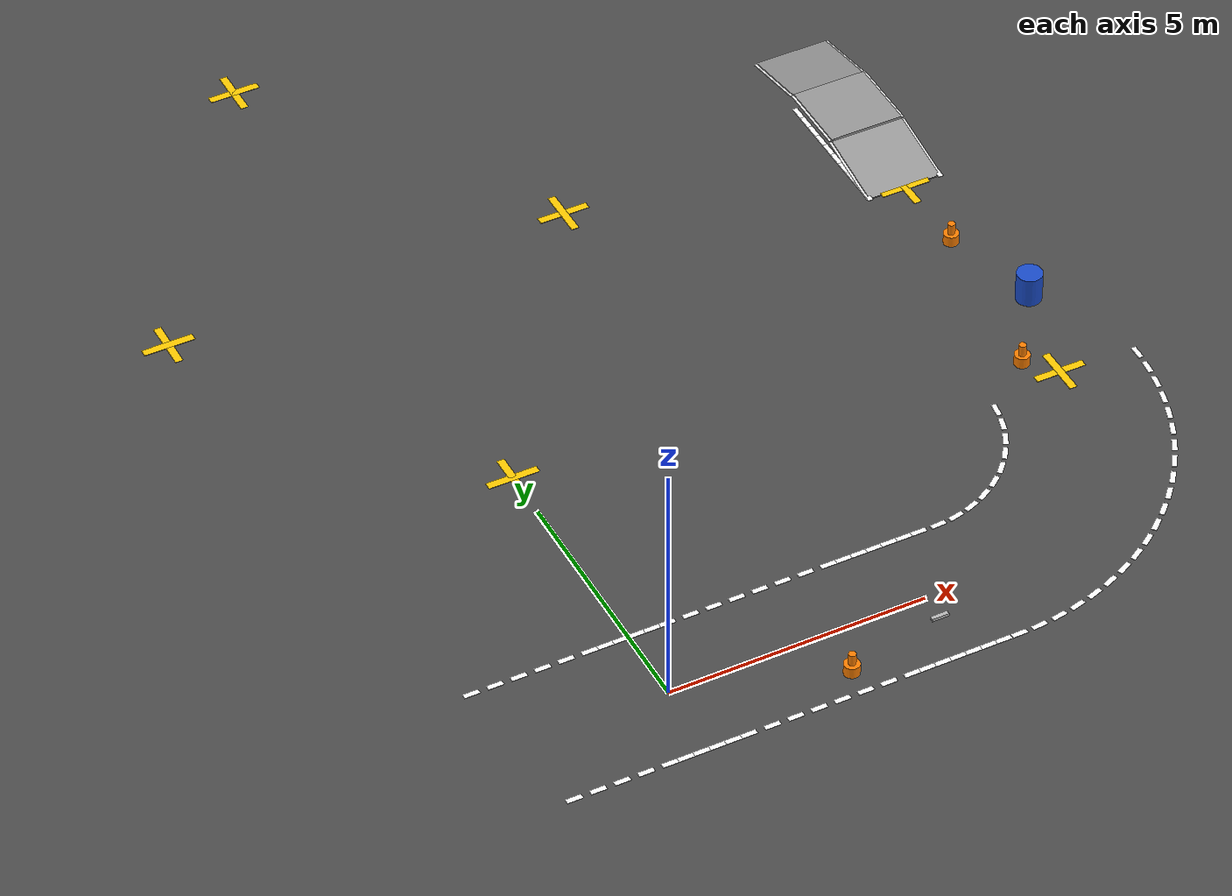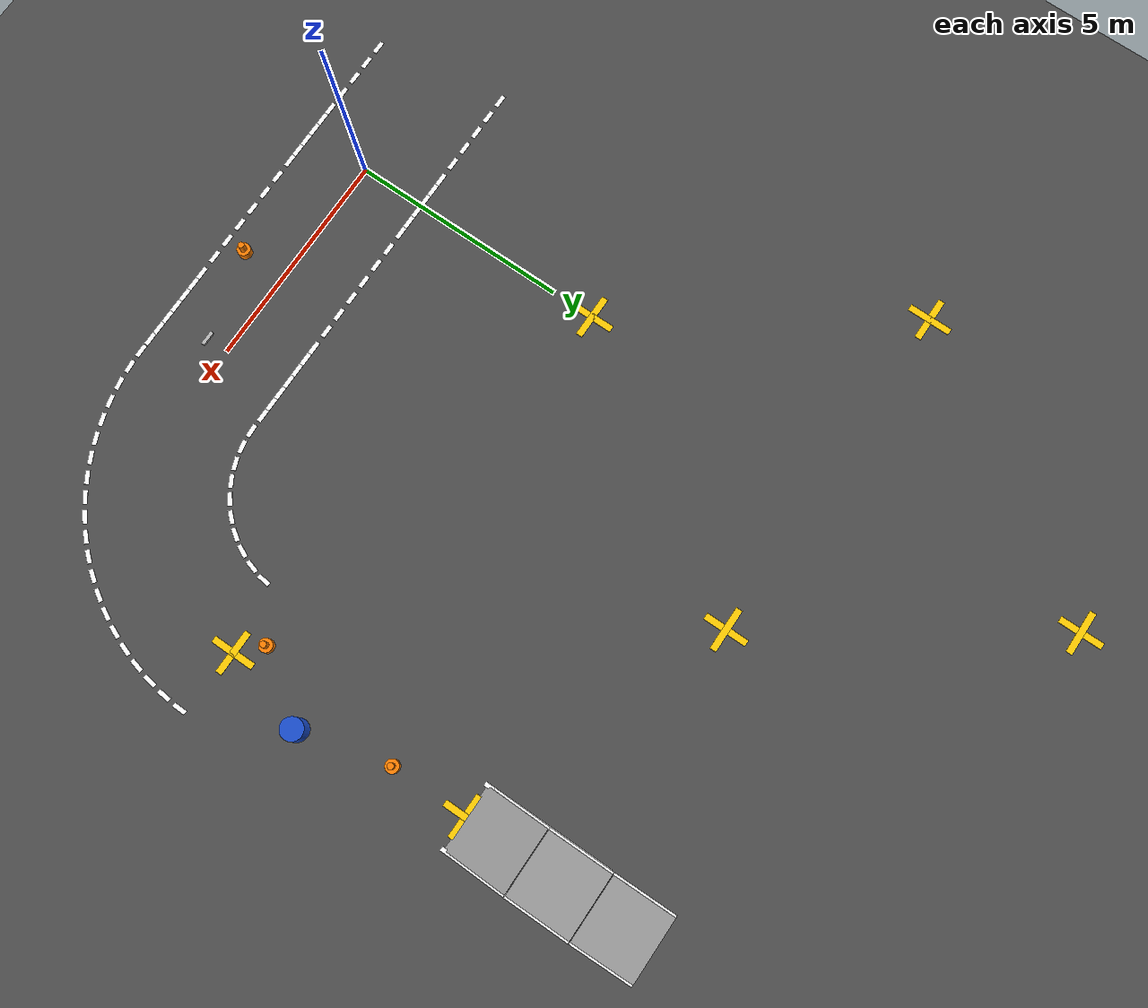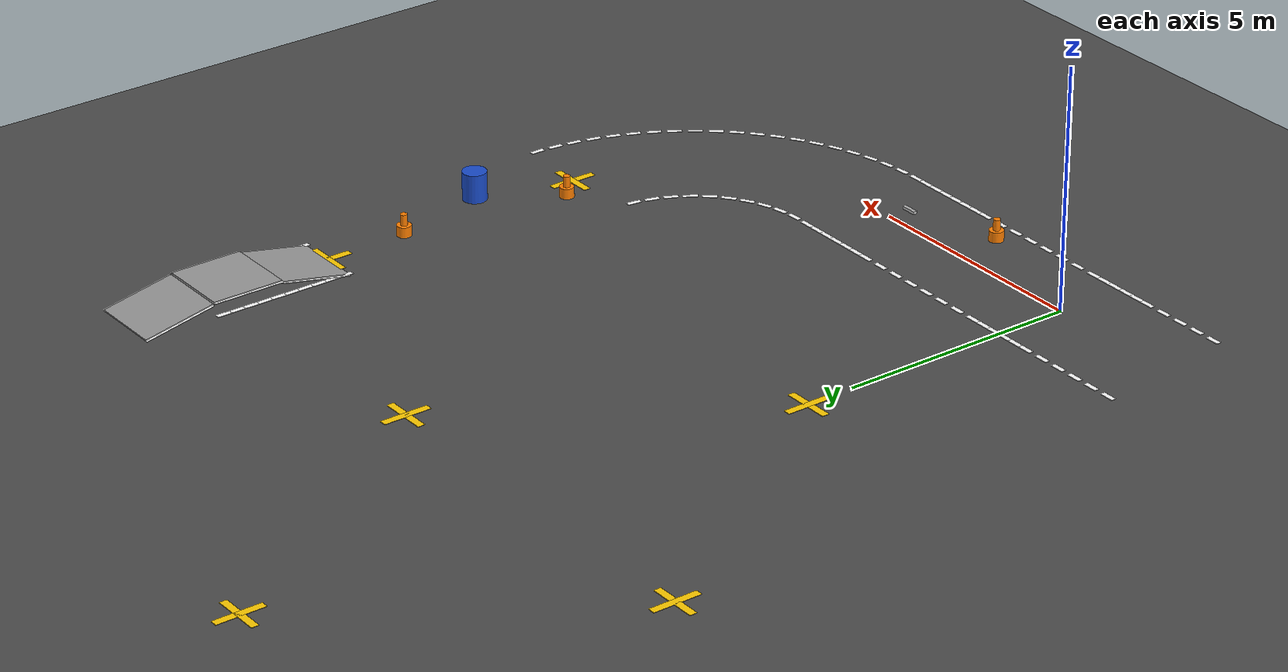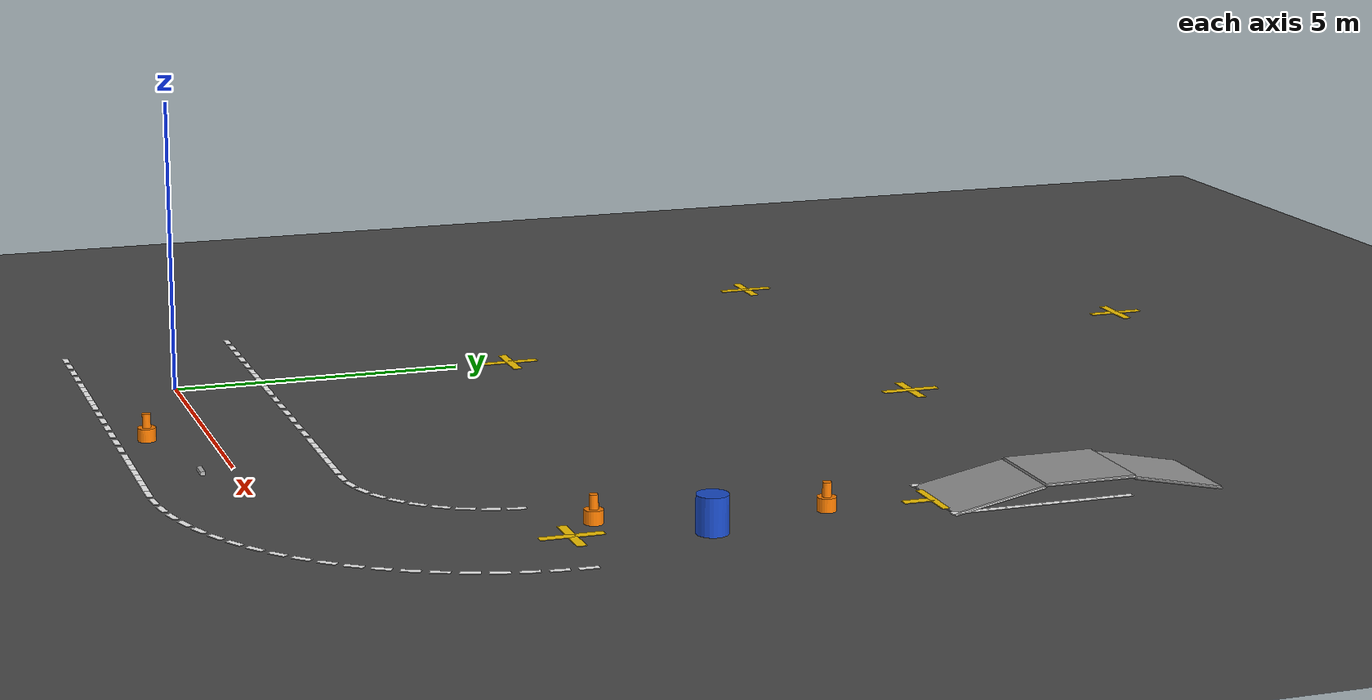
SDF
<sdf version="1.8">
 <world name="igvc_autonav">
  <model name="ground_plane">
   <static>true</static>
   <link name="link">
    <collision name="collision">
     <geometry><plane><normal>0 0 1</normal><size>60 60</size></plane></geometry>
     <surface><friction><ode><mu>0.8</mu><mu2>0.8</mu2></ode></friction></surface>
    </collision>
    <visual name="visual">
     <geometry><plane><normal>0 0 1</normal><size>60 60</size></plane></geometry>
     <material>
      <ambient>0.25 0.25 0.25 1</ambient>
      <diffuse>0.3 0.3 0.3 1</diffuse>
      <specular>0.1 0.1 0.1 1</specular>
     </material>
    </visual>
   </link>
  </model>
  <model name="lane_inner_9">
   <static>true</static>
   <pose>-3.0000 1.5000 0.01 0 0 0.0000</pose>
   <link name="link">
    <visual name="visual">
     <geometry><box><size>0.3 0.1 0.01</size></box></geometry>
     <material><ambient>1 1 1 1</ambient><diffuse>1 1 1 1</diffuse><emissive>1 1 1 1</emissive></material>
    </visual>
   </link>
  </model>
  <model name="lane_inner_10">
   <static>true</static>
   <pose>-2.5500 1.5000 0.01 0 0 0.0000</pose>
   <link name="link">
    <visual name="visual">
     <geometry><box><size>0.3 0.1 0.01</size></box></geometry>
     <material><ambient>1 1 1 1</ambient><diffuse>1 1 1 1</diffuse><emissive>1 1 1 1</emissive></material>
    </visual>
   </link>
  </model>
  <model name="lane_inner_11">
   <static>true</static>
   <pose>-2.1000 1.5000 0.01 0 0 0.0000</pose>
   <link name="link">
    <visual name="visual">
     <geometry><box><size>0.3 0.1 0.01</size></box></geometry>
     <material><ambient>1 1 1 1</ambient><diffuse>1 1 1 1</diffuse><emissive>1 1 1 1</emissive></material>
    </visual>
   </link>
  </model>
  <model name="lane_inner_12">
   <static>true</static>
   <pose>-1.6500 1.5000 0.01 0 0 0.0000</pose>
   <link name="link">
    <visual name="visual">
     <geometry><box><size>0.3 0.1 0.01</size></box></geometry>
     <material><ambient>1 1 1 1</ambient><diffuse>1 1 1 1</diffuse><emissive>1 1 1 1</emissive></material>
    </visual>
   </link>
  </model>
  <model name="lane_inner_13">
   <static>true</static>
   <pose>-1.2000 1.5000 0.01 0 0 0.0000</pose>
   <link name="link">
    <visual name="visual">
     <geometry><box><size>0.3 0.1 0.01</size></box></geometry>
     <material><ambient>1 1 1 1</ambient><diffuse>1 1 1 1</diffuse><emissive>1 1 1 1</emissive></material>
    </visual>
   </link>
  </model>
  <model name="lane_inner_14">
   <static>true</static>
   <pose>-0.7500 1.5000 0.01 0 0 0.0000</pose>
   <link name="link">
    <visual name="visual">
     <geometry><box><size>0.3 0.1 0.01</size></box></geometry>
     <material><ambient>1 1 1 1</ambient><diffuse>1 1 1 1</diffuse><emissive>1 1 1 1</emissive></material>
    </visual>
   </link>
  </model>
  <model name="lane_inner_15">
   <static>true</static>
   <pose>-0.4500 1.5000 0.01 0 0 0.0000</pose>
   <link name="link">
    <visual name="visual">
     <geometry><box><size>0.3 0.1 0.01</size></box></geometry>
     <material><ambient>1 1 1 1</ambient><diffuse>1 1 1 1</diffuse><emissive>1 1 1 1</emissive></material>
    </visual>
   </link>
  </model>
  <model name="lane_inner_16">
   <static>true</static>
   <pose>-0.1500 1.5000 0.01 0 0 0.0000</pose>
   <link name="link">
    <visual name="visual">
     <geometry><box><size>0.3 0.1 0.01</size></box></geometry>
     <material><ambient>1 1 1 1</ambient><diffuse>1 1 1 1</diffuse><emissive>1 1 1 1</emissive></material>
    </visual>
   </link>
  </model>
  <model name="lane_inner_17">
   <static>true</static>
   <pose>0.1500 1.5000 0.01 0 0 0.0000</pose>
   <link name="link">
    <visual name="visual">
     <geometry><box><size>0.3 0.1 0.01</size></box></geometry>
     <material><ambient>1 1 1 1</ambient><diffuse>1 1 1 1</diffuse><emissive>1 1 1 1</emissive></material>
    </visual>
   </link>
  </model>
  <model name="lane_inner_18">
   <static>true</static>
   <pose>0.4500 1.5000 0.01 0 0 0.0000</pose>
   <link name="link">
    <visual name="visual">
     <geometry><box><size>0.3 0.1 0.01</size></box></geometry>
     <material><ambient>1 1 1 1</ambient><diffuse>1 1 1 1</diffuse><emissive>1 1 1 1</emissive></material>
    </visual>
   </link>
  </model>
  <model name="lane_inner_19">
   <static>true</static>
   <pose>0.7500 1.5000 0.01 0 0 0.0000</pose>
   <link name="link">
    <visual name="visual">
     <geometry><box><size>0.3 0.1 0.01</size></box></geometry>
     <material><ambient>1 1 1 1</ambient><diffuse>1 1 1 1</diffuse><emissive>1 1 1 1</emissive></material>
    </visual>
   </link>
  </model>
  <model name="lane_inner_20">
   <static>true</static>
   <pose>1.2000 1.5000 0.01 0 0 0.0000</pose>
   <link name="link">
    <visual name="visual">
     <geometry><box><size>0.3 0.1 0.01</size></box></geometry>
     <material><ambient>1 1 1 1</ambient><diffuse>1 1 1 1</diffuse><emissive>1 1 1 1</emissive></material>
    </visual>
   </link>
  </model>
  <model name="lane_inner_21">
   <static>true</static>
   <pose>1.6500 1.5000 0.01 0 0 0.0000</pose>
   <link name="link">
    <visual name="visual">
     <geometry><box><size>0.3 0.1 0.01</size></box></geometry>
     <material><ambient>1 1 1 1</ambient><diffuse>1 1 1 1</diffuse><emissive>1 1 1 1</emissive></material>
    </visual>
   </link>
  </model>
  <model name="lane_inner_22">
   <static>true</static>
   <pose>2.1000 1.5000 0.01 0 0 0.0000</pose>
   <link name="link">
    <visual name="visual">
     <geometry><box><size>0.3 0.1 0.01</size></box></geometry>
     <material><ambient>1 1 1 1</ambient><diffuse>1 1 1 1</diffuse><emissive>1 1 1 1</emissive></material>
    </visual>
   </link>
  </model>
  <model name="lane_inner_23">
   <static>true</static>
   <pose>2.5500 1.5000 0.01 0 0 0.0000</pose>
   <link name="link">
    <visual name="visual">
     <geometry><box><size>0.3 0.1 0.01</size></box></geometry>
     <material><ambient>1 1 1 1</ambient><diffuse>1 1 1 1</diffuse><emissive>1 1 1 1</emissive></material>
    </visual>
   </link>
  </model>
  <model name="lane_inner_24">
   <static>true</static>
   <pose>3.0000 1.5000 0.01 0 0 0.0000</pose>
   <link name="link">
    <visual name="visual">
     <geometry><box><size>0.3 0.1 0.01</size></box></geometry>
     <material><ambient>1 1 1 1</ambient><diffuse>1 1 1 1</diffuse><emissive>1 1 1 1</emissive></material>
    </visual>
   </link>
  </model>
  <model name="lane_inner_25">
   <static>true</static>
   <pose>3.4500 1.5000 0.01 0 0 0.0000</pose>
   <link name="link">
    <visual name="visual">
     <geometry><box><size>0.3 0.1 0.01</size></box></geometry>
     <material><ambient>1 1 1 1</ambient><diffuse>1 1 1 1</diffuse><emissive>1 1 1 1</emissive></material>
    </visual>
   </link>
  </model>
  <model name="lane_inner_26">
   <static>true</static>
   <pose>3.9000 1.5000 0.01 0 0 0.0000</pose>
   <link name="link">
    <visual name="visual">
     <geometry><box><size>0.3 0.1 0.01</size></box></geometry>
     <material><ambient>1 1 1 1</ambient><diffuse>1 1 1 1</diffuse><emissive>1 1 1 1</emissive></material>
    </visual>
   </link>
  </model>
  <model name="lane_inner_27">
   <static>true</static>
   <pose>4.2000 1.5000 0.01 0 0 0.0000</pose>
   <link name="link">
    <visual name="visual">
     <geometry><box><size>0.3 0.1 0.01</size></box></geometry>
     <material><ambient>1 1 1 1</ambient><diffuse>1 1 1 1</diffuse><emissive>1 1 1 1</emissive></material>
    </visual>
   </link>
  </model>
  <model name="lane_inner_28">
   <static>true</static>
   <pose>4.5000 1.5000 0.01 0 0 0.0000</pose>
   <link name="link">
    <visual name="visual">
     <geometry><box><size>0.3 0.1 0.01</size></box></geometry>
     <material><ambient>1 1 1 1</ambient><diffuse>1 1 1 1</diffuse><emissive>1 1 1 1</emissive></material>
    </visual>
   </link>
  </model>
  <model name="lane_inner_29">
   <static>true</static>
   <pose>4.8000 1.5000 0.01 0 0 0.0000</pose>
   <link name="link">
    <visual name="visual">
     <geometry><box><size>0.3 0.1 0.01</size></box></geometry>
     <material><ambient>1 1 1 1</ambient><diffuse>1 1 1 1</diffuse><emissive>1 1 1 1</emissive></material>
    </visual>
   </link>
  </model>
  <model name="lane_inner_30">
   <static>true</static>
   <pose>5.1000 1.5000 0.01 0 0 0.0000</pose>
   <link name="link">
    <visual name="visual">
     <geometry><box><size>0.3 0.1 0.01</size></box></geometry>
     <material><ambient>1 1 1 1</ambient><diffuse>1 1 1 1</diffuse><emissive>1 1 1 1</emissive></material>
    </visual>
   </link>
  </model>
  <model name="lane_inner_31">
   <static>true</static>
   <pose>5.4000 1.5000 0.01 0 0 0.0000</pose>
   <link name="link">
    <visual name="visual">
     <geometry><box><size>0.3 0.1 0.01</size></box></geometry>
     <material><ambient>1 1 1 1</ambient><diffuse>1 1 1 1</diffuse><emissive>1 1 1 1</emissive></material>
    </visual>
   </link>
  </model>
  <model name="lane_inner_32">
   <static>true</static>
   <pose>5.7000 1.5000 0.01 0 0 0.0000</pose>
   <link name="link">
    <visual name="visual">
     <geometry><box><size>0.3 0.1 0.01</size></box></geometry>
     <material><ambient>1 1 1 1</ambient><diffuse>1 1 1 1</diffuse><emissive>1 1 1 1</emissive></material>
    </visual>
   </link>
  </model>
  <model name="lane_inner_33">
   <static>true</static>
   <pose>6.0958 1.5018 0.01 0 0 0.0575</pose>
   <link name="link">
    <visual name="visual">
     <geometry><box><size>0.3 0.1 0.01</size></box></geometry>
     <material><ambient>1 1 1 1</ambient><diffuse>1 1 1 1</diffuse><emissive>1 1 1 1</emissive></material>
    </visual>
   </link>
  </model>
  <model name="lane_inner_34">
   <static>true</static>
   <pose>6.4760 1.5457 0.01 0 0 0.2107</pose>
   <link name="link">
    <visual name="visual">
     <geometry><box><size>0.3 0.1 0.01</size></box></geometry>
     <material><ambient>1 1 1 1</ambient><diffuse>1 1 1 1</diffuse><emissive>1 1 1 1</emissive></material>
    </visual>
   </link>
  </model>
  <model name="lane_inner_35">
   <static>true</static>
   <pose>6.8450 1.6471 0.01 0 0 0.3640</pose>
   <link name="link">
    <visual name="visual">
     <geometry><box><size>0.3 0.1 0.01</size></box></geometry>
     <material><ambient>1 1 1 1</ambient><diffuse>1 1 1 1</diffuse><emissive>1 1 1 1</emissive></material>
    </visual>
   </link>
  </model>
  <model name="lane_inner_36">
   <static>true</static>
   <pose>7.1943 1.8037 0.01 0 0 0.5172</pose>
   <link name="link">
    <visual name="visual">
     <geometry><box><size>0.3 0.1 0.01</size></box></geometry>
     <material><ambient>1 1 1 1</ambient><diffuse>1 1 1 1</diffuse><emissive>1 1 1 1</emissive></material>
    </visual>
   </link>
  </model>
  <model name="lane_inner_37">
   <static>true</static>
   <pose>7.5156 2.0118 0.01 0 0 0.6705</pose>
   <link name="link">
    <visual name="visual">
     <geometry><box><size>0.3 0.1 0.01</size></box></geometry>
     <material><ambient>1 1 1 1</ambient><diffuse>1 1 1 1</diffuse><emissive>1 1 1 1</emissive></material>
    </visual>
   </link>
  </model>
  <model name="lane_inner_38">
   <static>true</static>
   <pose>7.8013 2.2664 0.01 0 0 0.8237</pose>
   <link name="link">
    <visual name="visual">
     <geometry><box><size>0.3 0.1 0.01</size></box></geometry>
     <material><ambient>1 1 1 1</ambient><diffuse>1 1 1 1</diffuse><emissive>1 1 1 1</emissive></material>
    </visual>
   </link>
  </model>
  <model name="lane_inner_39">
   <static>true</static>
   <pose>8.0448 2.5617 0.01 0 0 0.9770</pose>
   <link name="link">
    <visual name="visual">
     <geometry><box><size>0.3 0.1 0.01</size></box></geometry>
     <material><ambient>1 1 1 1</ambient><diffuse>1 1 1 1</diffuse><emissive>1 1 1 1</emissive></material>
    </visual>
   </link>
  </model>
  <model name="lane_inner_40">
   <static>true</static>
   <pose>8.2404 2.8907 0.01 0 0 1.1302</pose>
   <link name="link">
    <visual name="visual">
     <geometry><box><size>0.3 0.1 0.01</size></box></geometry>
     <material><ambient>1 1 1 1</ambient><diffuse>1 1 1 1</diffuse><emissive>1 1 1 1</emissive></material>
    </visual>
   </link>
  </model>
  <model name="lane_inner_41">
   <static>true</static>
   <pose>8.3835 3.2457 0.01 0 0 1.2835</pose>
   <link name="link">
    <visual name="visual">
     <geometry><box><size>0.3 0.1 0.01</size></box></geometry>
     <material><ambient>1 1 1 1</ambient><diffuse>1 1 1 1</diffuse><emissive>1 1 1 1</emissive></material>
    </visual>
   </link>
  </model>
  <model name="lane_inner_42">
   <static>true</static>
   <pose>8.4707 3.6184 0.01 0 0 1.4367</pose>
   <link name="link">
    <visual name="visual">
     <geometry><box><size>0.3 0.1 0.01</size></box></geometry>
     <material><ambient>1 1 1 1</ambient><diffuse>1 1 1 1</diffuse><emissive>1 1 1 1</emissive></material>
    </visual>
   </link>
  </model>
  <model name="lane_inner_43">
   <static>true</static>
   <pose>9.2500 9.8500 0.01 0 0 1.5708</pose>
   <link name="link">
    <visual name="visual">
     <geometry><box><size>0.3 0.1 0.01</size></box></geometry>
     <material><ambient>1 1 1 1</ambient><diffuse>1 1 1 1</diffuse><emissive>1 1 1 1</emissive></material>
    </visual>
   </link>
  </model>
  <model name="lane_inner_44">
   <static>true</static>
   <pose>9.2500 10.1500 0.01 0 0 1.5708</pose>
   <link name="link">
    <visual name="visual">
     <geometry><box><size>0.3 0.1 0.01</size></box></geometry>
     <material><ambient>1 1 1 1</ambient><diffuse>1 1 1 1</diffuse><emissive>1 1 1 1</emissive></material>
    </visual>
   </link>
  </model>
  <model name="lane_inner_45">
   <static>true</static>
   <pose>9.2500 10.4500 0.01 0 0 1.5708</pose>
   <link name="link">
    <visual name="visual">
     <geometry><box><size>0.3 0.1 0.01</size></box></geometry>
     <material><ambient>1 1 1 1</ambient><diffuse>1 1 1 1</diffuse><emissive>1 1 1 1</emissive></material>
    </visual>
   </link>
  </model>
  <model name="lane_inner_46">
   <static>true</static>
   <pose>9.2500 10.7500 0.01 0 0 1.5708</pose>
   <link name="link">
    <visual name="visual">
     <geometry><box><size>0.3 0.1 0.01</size></box></geometry>
     <material><ambient>1 1 1 1</ambient><diffuse>1 1 1 1</diffuse><emissive>1 1 1 1</emissive></material>
    </visual>
   </link>
  </model>
  <model name="lane_inner_47">
   <static>true</static>
   <pose>9.2500 11.0500 0.01 0 0 1.5708</pose>
   <link name="link">
    <visual name="visual">
     <geometry><box><size>0.3 0.1 0.01</size></box></geometry>
     <material><ambient>1 1 1 1</ambient><diffuse>1 1 1 1</diffuse><emissive>1 1 1 1</emissive></material>
    </visual>
   </link>
  </model>
  <model name="lane_inner_48">
   <static>true</static>
   <pose>9.2500 11.3500 0.01 0 0 1.5708</pose>
   <link name="link">
    <visual name="visual">
     <geometry><box><size>0.3 0.1 0.01</size></box></geometry>
     <material><ambient>1 1 1 1</ambient><diffuse>1 1 1 1</diffuse><emissive>1 1 1 1</emissive></material>
    </visual>
   </link>
  </model>
  <model name="lane_inner_49">
   <static>true</static>
   <pose>9.2500 11.6500 0.01 0 0 1.5708</pose>
   <link name="link">
    <visual name="visual">
     <geometry><box><size>0.3 0.1 0.01</size></box></geometry>
     <material><ambient>1 1 1 1</ambient><diffuse>1 1 1 1</diffuse><emissive>1 1 1 1</emissive></material>
    </visual>
   </link>
  </model>
  <model name="lane_inner_50">
   <static>true</static>
   <pose>9.2500 11.9500 0.01 0 0 1.5708</pose>
   <link name="link">
    <visual name="visual">
     <geometry><box><size>0.3 0.1 0.01</size></box></geometry>
     <material><ambient>1 1 1 1</ambient><diffuse>1 1 1 1</diffuse><emissive>1 1 1 1</emissive></material>
    </visual>
   </link>
  </model>
  <model name="lane_inner_51">
   <static>true</static>
   <pose>9.2500 12.2500 0.01 0 0 1.5708</pose>
   <link name="link">
    <visual name="visual">
     <geometry><box><size>0.3 0.1 0.01</size></box></geometry>
     <material><ambient>1 1 1 1</ambient><diffuse>1 1 1 1</diffuse><emissive>1 1 1 1</emissive></material>
    </visual>
   </link>
  </model>
  <model name="lane_inner_52">
   <static>true</static>
   <pose>9.2500 12.5500 0.01 0 0 1.5708</pose>
   <link name="link">
    <visual name="visual">
     <geometry><box><size>0.3 0.1 0.01</size></box></geometry>
     <material><ambient>1 1 1 1</ambient><diffuse>1 1 1 1</diffuse><emissive>1 1 1 1</emissive></material>
    </visual>
   </link>
  </model>
  <model name="lane_outer_10">
   <static>true</static>
   <pose>-2.5500 -1.5000 0.01 0 0 0.0000</pose>
   <link name="link">
    <visual name="visual">
     <geometry><box><size>0.3 0.1 0.01</size></box></geometry>
     <material><ambient>1 1 1 1</ambient><diffuse>1 1 1 1</diffuse><emissive>1 1 1 1</emissive></material>
    </visual>
   </link>
  </model>
  <model name="lane_outer_11">
   <static>true</static>
   <pose>-2.1000 -1.5000 0.01 0 0 0.0000</pose>
   <link name="link">
    <visual name="visual">
     <geometry><box><size>0.3 0.1 0.01</size></box></geometry>
     <material><ambient>1 1 1 1</ambient><diffuse>1 1 1 1</diffuse><emissive>1 1 1 1</emissive></material>
    </visual>
   </link>
  </model>
  <model name="lane_outer_12">
   <static>true</static>
   <pose>-1.6500 -1.5000 0.01 0 0 0.0000</pose>
   <link name="link">
    <visual name="visual">
     <geometry><box><size>0.3 0.1 0.01</size></box></geometry>
     <material><ambient>1 1 1 1</ambient><diffuse>1 1 1 1</diffuse><emissive>1 1 1 1</emissive></material>
    </visual>
   </link>
  </model>
  <model name="lane_outer_13">
   <static>true</static>
   <pose>-1.2000 -1.5000 0.01 0 0 0.0000</pose>
   <link name="link">
    <visual name="visual">
     <geometry><box><size>0.3 0.1 0.01</size></box></geometry>
     <material><ambient>1 1 1 1</ambient><diffuse>1 1 1 1</diffuse><emissive>1 1 1 1</emissive></material>
    </visual>
   </link>
  </model>
  <model name="lane_outer_14">
   <static>true</static>
   <pose>-0.7500 -1.5000 0.01 0 0 0.0000</pose>
   <link name="link">
    <visual name="visual">
     <geometry><box><size>0.3 0.1 0.01</size></box></geometry>
     <material><ambient>1 1 1 1</ambient><diffuse>1 1 1 1</diffuse><emissive>1 1 1 1</emissive></material>
    </visual>
   </link>
  </model>
  <model name="lane_outer_15">
   <static>true</static>
   <pose>-0.4500 -1.5000 0.01 0 0 0.0000</pose>
   <link name="link">
    <visual name="visual">
     <geometry><box><size>0.3 0.1 0.01</size></box></geometry>
     <material><ambient>1 1 1 1</ambient><diffuse>1 1 1 1</diffuse><emissive>1 1 1 1</emissive></material>
    </visual>
   </link>
  </model>
  <model name="lane_outer_16">
   <static>true</static>
   <pose>-0.1500 -1.5000 0.01 0 0 0.0000</pose>
   <link name="link">
    <visual name="visual">
     <geometry><box><size>0.3 0.1 0.01</size></box></geometry>
     <material><ambient>1 1 1 1</ambient><diffuse>1 1 1 1</diffuse><emissive>1 1 1 1</emissive></material>
    </visual>
   </link>
  </model>
  <model name="lane_outer_17">
   <static>true</static>
   <pose>0.1500 -1.5000 0.01 0 0 0.0000</pose>
   <link name="link">
    <visual name="visual">
     <geometry><box><size>0.3 0.1 0.01</size></box></geometry>
     <material><ambient>1 1 1 1</ambient><diffuse>1 1 1 1</diffuse><emissive>1 1 1 1</emissive></material>
    </visual>
   </link>
  </model>
  <model name="lane_outer_18">
   <static>true</static>
   <pose>0.4500 -1.5000 0.01 0 0 0.0000</pose>
   <link name="link">
    <visual name="visual">
     <geometry><box><size>0.3 0.1 0.01</size></box></geometry>
     <material><ambient>1 1 1 1</ambient><diffuse>1 1 1 1</diffuse><emissive>1 1 1 1</emissive></material>
    </visual>
   </link>
  </model>
  <model name="lane_outer_19">
   <static>true</static>
   <pose>0.7500 -1.5000 0.01 0 0 0.0000</pose>
   <link name="link">
    <visual name="visual">
     <geometry><box><size>0.3 0.1 0.01</size></box></geometry>
     <material><ambient>1 1 1 1</ambient><diffuse>1 1 1 1</diffuse><emissive>1 1 1 1</emissive></material>
    </visual>
   </link>
  </model>
  <model name="lane_outer_20">
   <static>true</static>
   <pose>1.2000 -1.5000 0.01 0 0 0.0000</pose>
   <link name="link">
    <visual name="visual">
     <geometry><box><size>0.3 0.1 0.01</size></box></geometry>
     <material><ambient>1 1 1 1</ambient><diffuse>1 1 1 1</diffuse><emissive>1 1 1 1</emissive></material>
    </visual>
   </link>
  </model>
  <model name="lane_outer_21">
   <static>true</static>
   <pose>1.6500 -1.5000 0.01 0 0 0.0000</pose>
   <link name="link">
    <visual name="visual">
     <geometry><box><size>0.3 0.1 0.01</size></box></geometry>
     <material><ambient>1 1 1 1</ambient><diffuse>1 1 1 1</diffuse><emissive>1 1 1 1</emissive></material>
    </visual>
   </link>
  </model>
  <model name="lane_outer_22">
   <static>true</static>
   <pose>2.1000 -1.5000 0.01 0 0 0.0000</pose>
   <link name="link">
    <visual name="visual">
     <geometry><box><size>0.3 0.1 0.01</size></box></geometry>
     <material><ambient>1 1 1 1</ambient><diffuse>1 1 1 1</diffuse><emissive>1 1 1 1</emissive></material>
    </visual>
   </link>
  </model>
  <model name="lane_outer_23">
   <static>true</static>
   <pose>2.5500 -1.5000 0.01 0 0 0.0000</pose>
   <link name="link">
    <visual name="visual">
     <geometry><box><size>0.3 0.1 0.01</size></box></geometry>
     <material><ambient>1 1 1 1</ambient><diffuse>1 1 1 1</diffuse><emissive>1 1 1 1</emissive></material>
    </visual>
   </link>
  </model>
  <model name="lane_outer_24">
   <static>true</static>
   <pose>3.0000 -1.5000 0.01 0 0 0.0000</pose>
   <link name="link">
    <visual name="visual">
     <geometry><box><size>0.3 0.1 0.01</size></box></geometry>
     <material><ambient>1 1 1 1</ambient><diffuse>1 1 1 1</diffuse><emissive>1 1 1 1</emissive></material>
    </visual>
   </link>
  </model>
  <model name="lane_outer_25">
   <static>true</static>
   <pose>3.4500 -1.5000 0.01 0 0 0.0000</pose>
   <link name="link">
    <visual name="visual">
     <geometry><box><size>0.3 0.1 0.01</size></box></geometry>
     <material><ambient>1 1 1 1</ambient><diffuse>1 1 1 1</diffuse><emissive>1 1 1 1</emissive></material>
    </visual>
   </link>
  </model>
  <model name="lane_outer_26">
   <static>true</static>
   <pose>3.9000 -1.5000 0.01 0 0 0.0000</pose>
   <link name="link">
    <visual name="visual">
     <geometry><box><size>0.3 0.1 0.01</size></box></geometry>
     <material><ambient>1 1 1 1</ambient><diffuse>1 1 1 1</diffuse><emissive>1 1 1 1</emissive></material>
    </visual>
   </link>
  </model>
  <model name="lane_outer_27">
   <static>true</static>
   <pose>4.2000 -1.5000 0.01 0 0 0.0000</pose>
   <link name="link">
    <visual name="visual">
     <geometry><box><size>0.3 0.1 0.01</size></box></geometry>
     <material><ambient>1 1 1 1</ambient><diffuse>1 1 1 1</diffuse><emissive>1 1 1 1</emissive></material>
    </visual>
   </link>
  </model>
  <model name="lane_outer_28">
   <static>true</static>
   <pose>4.5000 -1.5000 0.01 0 0 0.0000</pose>
   <link name="link">
    <visual name="visual">
     <geometry><box><size>0.3 0.1 0.01</size></box></geometry>
     <material><ambient>1 1 1 1</ambient><diffuse>1 1 1 1</diffuse><emissive>1 1 1 1</emissive></material>
    </visual>
   </link>
  </model>
  <model name="lane_outer_29">
   <static>true</static>
   <pose>4.8000 -1.5000 0.01 0 0 0.0000</pose>
   <link name="link">
    <visual name="visual">
     <geometry><box><size>0.3 0.1 0.01</size></box></geometry>
     <material><ambient>1 1 1 1</ambient><diffuse>1 1 1 1</diffuse><emissive>1 1 1 1</emissive></material>
    </visual>
   </link>
  </model>
  <model name="lane_outer_30">
   <static>true</static>
   <pose>5.1000 -1.5000 0.01 0 0 0.0000</pose>
   <link name="link">
    <visual name="visual">
     <geometry><box><size>0.3 0.1 0.01</size></box></geometry>
     <material><ambient>1 1 1 1</ambient><diffuse>1 1 1 1</diffuse><emissive>1 1 1 1</emissive></material>
    </visual>
   </link>
  </model>
  <model name="lane_outer_31">
   <static>true</static>
   <pose>5.4000 -1.5000 0.01 0 0 0.0000</pose>
   <link name="link">
    <visual name="visual">
     <geometry><box><size>0.3 0.1 0.01</size></box></geometry>
     <material><ambient>1 1 1 1</ambient><diffuse>1 1 1 1</diffuse><emissive>1 1 1 1</emissive></material>
    </visual>
   </link>
  </model>
  <model name="lane_outer_32">
   <static>true</static>
   <pose>5.7000 -1.5000 0.01 0 0 0.0000</pose>
   <link name="link">
    <visual name="visual">
     <geometry><box><size>0.3 0.1 0.01</size></box></geometry>
     <material><ambient>1 1 1 1</ambient><diffuse>1 1 1 1</diffuse><emissive>1 1 1 1</emissive></material>
    </visual>
   </link>
  </model>
  <model name="lane_outer_33">
   <static>true</static>
   <pose>6.0145 -1.4999 0.01 0 0 0.0202</pose>
   <link name="link">
    <visual name="visual">
     <geometry><box><size>0.3 0.1 0.01</size></box></geometry>
     <material><ambient>1 1 1 1</ambient><diffuse>1 1 1 1</diffuse><emissive>1 1 1 1</emissive></material>
    </visual>
   </link>
  </model>
  <model name="lane_outer_34">
   <static>true</static>
   <pose>6.4210 -1.4839 0.01 0 0 0.0958</pose>
   <link name="link">
    <visual name="visual">
     <geometry><box><size>0.3 0.1 0.01</size></box></geometry>
     <material><ambient>1 1 1 1</ambient><diffuse>1 1 1 1</diffuse><emissive>1 1 1 1</emissive></material>
    </visual>
   </link>
  </model>
  <model name="lane_outer_35">
   <static>true</static>
   <pose>6.8396 -1.4355 0.01 0 0 0.1724</pose>
   <link name="link">
    <visual name="visual">
     <geometry><box><size>0.3 0.1 0.01</size></box></geometry>
     <material><ambient>1 1 1 1</ambient><diffuse>1 1 1 1</diffuse><emissive>1 1 1 1</emissive></material>
    </visual>
   </link>
  </model>
  <model name="lane_outer_36">
   <static>true</static>
   <pose>7.2532 -1.3553 0.01 0 0 0.2490</pose>
   <link name="link">
    <visual name="visual">
     <geometry><box><size>0.3 0.1 0.01</size></box></geometry>
     <material><ambient>1 1 1 1</ambient><diffuse>1 1 1 1</diffuse><emissive>1 1 1 1</emissive></material>
    </visual>
   </link>
  </model>
  <model name="lane_outer_37">
   <static>true</static>
   <pose>7.6595 -1.2437 0.01 0 0 0.3257</pose>
   <link name="link">
    <visual name="visual">
     <geometry><box><size>0.3 0.1 0.01</size></box></geometry>
     <material><ambient>1 1 1 1</ambient><diffuse>1 1 1 1</diffuse><emissive>1 1 1 1</emissive></material>
    </visual>
   </link>
  </model>
  <model name="lane_outer_38">
   <static>true</static>
   <pose>8.0560 -1.1013 0.01 0 0 0.4023</pose>
   <link name="link">
    <visual name="visual">
     <geometry><box><size>0.3 0.1 0.01</size></box></geometry>
     <material><ambient>1 1 1 1</ambient><diffuse>1 1 1 1</diffuse><emissive>1 1 1 1</emissive></material>
    </visual>
   </link>
  </model>
  <model name="lane_outer_39">
   <static>true</static>
   <pose>8.4405 -0.9289 0.01 0 0 0.4789</pose>
   <link name="link">
    <visual name="visual">
     <geometry><box><size>0.3 0.1 0.01</size></box></geometry>
     <material><ambient>1 1 1 1</ambient><diffuse>1 1 1 1</diffuse><emissive>1 1 1 1</emissive></material>
    </visual>
   </link>
  </model>
  <model name="lane_outer_40">
   <static>true</static>
   <pose>8.8106 -0.7276 0.01 0 0 0.5555</pose>
   <link name="link">
    <visual name="visual">
     <geometry><box><size>0.3 0.1 0.01</size></box></geometry>
     <material><ambient>1 1 1 1</ambient><diffuse>1 1 1 1</diffuse><emissive>1 1 1 1</emissive></material>
    </visual>
   </link>
  </model>
  <model name="lane_outer_41">
   <static>true</static>
   <pose>9.1643 -0.4986 0.01 0 0 0.6321</pose>
   <link name="link">
    <visual name="visual">
     <geometry><box><size>0.3 0.1 0.01</size></box></geometry>
     <material><ambient>1 1 1 1</ambient><diffuse>1 1 1 1</diffuse><emissive>1 1 1 1</emissive></material>
    </visual>
   </link>
  </model>
  <model name="lane_outer_42">
   <static>true</static>
   <pose>9.4993 -0.2432 0.01 0 0 0.7088</pose>
   <link name="link">
    <visual name="visual">
     <geometry><box><size>0.3 0.1 0.01</size></box></geometry>
     <material><ambient>1 1 1 1</ambient><diffuse>1 1 1 1</diffuse><emissive>1 1 1 1</emissive></material>
    </visual>
   </link>
  </model>
  <model name="lane_outer_43">
   <static>true</static>
   <pose>9.8139 0.0371 0.01 0 0 0.7854</pose>
   <link name="link">
    <visual name="visual">
     <geometry><box><size>0.3 0.1 0.01</size></box></geometry>
     <material><ambient>1 1 1 1</ambient><diffuse>1 1 1 1</diffuse><emissive>1 1 1 1</emissive></material>
    </visual>
   </link>
  </model>
  <model name="lane_outer_44">
   <static>true</static>
   <pose>10.1060 0.3407 0.01 0 0 0.8620</pose>
   <link name="link">
    <visual name="visual">
     <geometry><box><size>0.3 0.1 0.01</size></box></geometry>
     <material><ambient>1 1 1 1</ambient><diffuse>1 1 1 1</diffuse><emissive>1 1 1 1</emissive></material>
    </visual>
   </link>
  </model>
  <model name="lane_outer_45">
   <static>true</static>
   <pose>10.3741 0.6658 0.01 0 0 0.9386</pose>
   <link name="link">
    <visual name="visual">
     <geometry><box><size>0.3 0.1 0.01</size></box></geometry>
     <material><ambient>1 1 1 1</ambient><diffuse>1 1 1 1</diffuse><emissive>1 1 1 1</emissive></material>
    </visual>
   </link>
  </model>
  <model name="lane_outer_46">
   <static>true</static>
   <pose>10.6165 1.0104 0.01 0 0 1.0153</pose>
   <link name="link">
    <visual name="visual">
     <geometry><box><size>0.3 0.1 0.01</size></box></geometry>
     <material><ambient>1 1 1 1</ambient><diffuse>1 1 1 1</diffuse><emissive>1 1 1 1</emissive></material>
    </visual>
   </link>
  </model>
  <model name="lane_outer_47">
   <static>true</static>
   <pose>10.8318 1.3725 0.01 0 0 1.0919</pose>
   <link name="link">
    <visual name="visual">
     <geometry><box><size>0.3 0.1 0.01</size></box></geometry>
     <material><ambient>1 1 1 1</ambient><diffuse>1 1 1 1</diffuse><emissive>1 1 1 1</emissive></material>
    </visual>
   </link>
  </model>
  <model name="lane_outer_48">
   <static>true</static>
   <pose>11.0188 1.7501 0.01 0 0 1.1685</pose>
   <link name="link">
    <visual name="visual">
     <geometry><box><size>0.3 0.1 0.01</size></box></geometry>
     <material><ambient>1 1 1 1</ambient><diffuse>1 1 1 1</diffuse><emissive>1 1 1 1</emissive></material>
    </visual>
   </link>
  </model>
  <model name="lane_outer_49">
   <static>true</static>
   <pose>11.1763 2.1409 0.01 0 0 1.2451</pose>
   <link name="link">
    <visual name="visual">
     <geometry><box><size>0.3 0.1 0.01</size></box></geometry>
     <material><ambient>1 1 1 1</ambient><diffuse>1 1 1 1</diffuse><emissive>1 1 1 1</emissive></material>
    </visual>
   </link>
  </model>
  <model name="lane_outer_50">
   <static>true</static>
   <pose>11.3034 2.5426 0.01 0 0 1.3218</pose>
   <link name="link">
    <visual name="visual">
     <geometry><box><size>0.3 0.1 0.01</size></box></geometry>
     <material><ambient>1 1 1 1</ambient><diffuse>1 1 1 1</diffuse><emissive>1 1 1 1</emissive></material>
    </visual>
   </link>
  </model>
  <model name="lane_outer_51">
   <static>true</static>
   <pose>11.3994 2.9528 0.01 0 0 1.3984</pose>
   <link name="link">
    <visual name="visual">
     <geometry><box><size>0.3 0.1 0.01</size></box></geometry>
     <material><ambient>1 1 1 1</ambient><diffuse>1 1 1 1</diffuse><emissive>1 1 1 1</emissive></material>
    </visual>
   </link>
  </model>
  <model name="lane_outer_52">
   <static>true</static>
   <pose>11.4637 3.3692 0.01 0 0 1.4750</pose>
   <link name="link">
    <visual name="visual">
     <geometry><box><size>0.3 0.1 0.01</size></box></geometry>
     <material><ambient>1 1 1 1</ambient><diffuse>1 1 1 1</diffuse><emissive>1 1 1 1</emissive></material>
    </visual>
   </link>
  </model>
  <model name="lane_outer_53">
   <static>true</static>
   <pose>11.4960 3.7893 0.01 0 0 1.5501</pose>
   <link name="link">
    <visual name="visual">
     <geometry><box><size>0.3 0.1 0.01</size></box></geometry>
     <material><ambient>1 1 1 1</ambient><diffuse>1 1 1 1</diffuse><emissive>1 1 1 1</emissive></material>
    </visual>
   </link>
  </model>
  <model name="lane_outer_54">
   <static>true</static>
   <pose>10.7500 9.8500 0.01 0 0 1.5708</pose>
   <link name="link">
    <visual name="visual">
     <geometry><box><size>0.3 0.1 0.01</size></box></geometry>
     <material><ambient>1 1 1 1</ambient><diffuse>1 1 1 1</diffuse><emissive>1 1 1 1</emissive></material>
    </visual>
   </link>
  </model>
  <model name="lane_outer_55">
   <static>true</static>
   <pose>10.7500 10.1500 0.01 0 0 1.5708</pose>
   <link name="link">
    <visual name="visual">
     <geometry><box><size>0.3 0.1 0.01</size></box></geometry>
     <material><ambient>1 1 1 1</ambient><diffuse>1 1 1 1</diffuse><emissive>1 1 1 1</emissive></material>
    </visual>
   </link>
  </model>
  <model name="lane_outer_56">
   <static>true</static>
   <pose>10.7500 10.4500 0.01 0 0 1.5708</pose>
   <link name="link">
    <visual name="visual">
     <geometry><box><size>0.3 0.1 0.01</size></box></geometry>
     <material><ambient>1 1 1 1</ambient><diffuse>1 1 1 1</diffuse><emissive>1 1 1 1</emissive></material>
    </visual>
   </link>
  </model>
  <model name="lane_outer_57">
   <static>true</static>
   <pose>10.7500 10.7500 0.01 0 0 1.5708</pose>
   <link name="link">
    <visual name="visual">
     <geometry><box><size>0.3 0.1 0.01</size></box></geometry>
     <material><ambient>1 1 1 1</ambient><diffuse>1 1 1 1</diffuse><emissive>1 1 1 1</emissive></material>
    </visual>
   </link>
  </model>
  <model name="lane_outer_58">
   <static>true</static>
   <pose>10.7500 11.0500 0.01 0 0 1.5708</pose>
   <link name="link">
    <visual name="visual">
     <geometry><box><size>0.3 0.1 0.01</size></box></geometry>
     <material><ambient>1 1 1 1</ambient><diffuse>1 1 1 1</diffuse><emissive>1 1 1 1</emissive></material>
    </visual>
   </link>
  </model>
  <model name="lane_outer_59">
   <static>true</static>
   <pose>10.7500 11.3500 0.01 0 0 1.5708</pose>
   <link name="link">
    <visual name="visual">
     <geometry><box><size>0.3 0.1 0.01</size></box></geometry>
     <material><ambient>1 1 1 1</ambient><diffuse>1 1 1 1</diffuse><emissive>1 1 1 1</emissive></material>
    </visual>
   </link>
  </model>
  <model name="lane_outer_60">
   <static>true</static>
   <pose>10.7500 11.6500 0.01 0 0 1.5708</pose>
   <link name="link">
    <visual name="visual">
     <geometry><box><size>0.3 0.1 0.01</size></box></geometry>
     <material><ambient>1 1 1 1</ambient><diffuse>1 1 1 1</diffuse><emissive>1 1 1 1</emissive></material>
    </visual>
   </link>
  </model>
  <model name="lane_outer_61">
   <static>true</static>
   <pose>10.7500 11.9500 0.01 0 0 1.5708</pose>
   <link name="link">
    <visual name="visual">
     <geometry><box><size>0.3 0.1 0.01</size></box></geometry>
     <material><ambient>1 1 1 1</ambient><diffuse>1 1 1 1</diffuse><emissive>1 1 1 1</emissive></material>
    </visual>
   </link>
  </model>
  <model name="lane_outer_62">
   <static>true</static>
   <pose>10.7500 12.2500 0.01 0 0 1.5708</pose>
   <link name="link">
    <visual name="visual">
     <geometry><box><size>0.3 0.1 0.01</size></box></geometry>
     <material><ambient>1 1 1 1</ambient><diffuse>1 1 1 1</diffuse><emissive>1 1 1 1</emissive></material>
    </visual>
   </link>
  </model>
  <model name="lane_outer_63">
   <static>true</static>
   <pose>10.7500 12.5500 0.01 0 0 1.5708</pose>
   <link name="link">
    <visual name="visual">
     <geometry><box><size>0.3 0.1 0.01</size></box></geometry>
     <material><ambient>1 1 1 1</ambient><diffuse>1 1 1 1</diffuse><emissive>1 1 1 1</emissive></material>
    </visual>
   </link>
  </model>
  <include><uri>model://cone</uri><name>cone_1</name><pose>10 8 0 0 0 0</pose></include>
  <include><uri>model://cone</uri><name>cone_3</name><pose>3 -1 0 0 0 0</pose></include>
  <include><uri>model://barricade</uri><name>barricade_1</name><pose>5 -0.5 0 0 0 0</pose></include>
  <include><uri>model://barrel</uri><name>barrel_nml_1</name><pose>10.5 6 0 0 0 0</pose></include>
  <include><uri>model://cone</uri><name>cone_nml_1</name><pose>9.5 4.5 0 0 0 0</pose></include>
  <include><uri>model://ramp</uri><name>ramp_1</name><pose>10 12 0 0 0 1.5708</pose></include>
  <model name="waypoint_1">
   <static>true</static>
   <link name="link">
    <visual name="arm_x">
     <pose>-4 12 0.005 0 0 0</pose>
     <geometry><box><size>1.0 0.15 0.01</size></box></geometry>
     <material><ambient>1 0.8 0 1</ambient><diffuse>1 0.8 0 1</diffuse><emissive>0.5 0.4 0 1</emissive></material>
    </visual>
    <visual name="arm_y">
     <pose>-4 12 0.005 0 0 1.5708</pose>
     <geometry><box><size>1.0 0.15 0.01</size></box></geometry>
     <material><ambient>1 0.8 0 1</ambient><diffuse>1 0.8 0 1</diffuse><emissive>0.5 0.4 0 1</emissive></material>
    </visual>
   </link>
  </model>
  <model name="waypoint_2">
   <static>true</static>
   <link name="link">
    <visual name="arm_x">
     <pose>4 12 0.005 0 0 0</pose>
     <geometry><box><size>1.0 0.15 0.01</size></box></geometry>
     <material><ambient>1 0.8 0 1</ambient><diffuse>1 0.8 0 1</diffuse><emissive>0.5 0.4 0 1</emissive></material>
    </visual>
    <visual name="arm_y">
     <pose>4 12 0.005 0 0 1.5708</pose>
     <geometry><box><size>1.0 0.15 0.01</size></box></geometry>
     <material><ambient>1 0.8 0 1</ambient><diffuse>1 0.8 0 1</diffuse><emissive>0.5 0.4 0 1</emissive></material>
    </visual>
   </link>
  </model>
  <model name="waypoint_3">
   <static>true</static>
   <link name="link">
    <visual name="arm_x">
     <pose>0 6 0.005 0 0 0</pose>
     <geometry><box><size>1.0 0.15 0.01</size></box></geometry>
     <material><ambient>1 0.8 0 1</ambient><diffuse>1 0.8 0 1</diffuse><emissive>0.5 0.4 0 1</emissive></material>
    </visual>
    <visual name="arm_y">
     <pose>0 6 0.005 0 0 1.5708</pose>
     <geometry><box><size>1.0 0.15 0.01</size></box></geometry>
     <material><ambient>1 0.8 0 1</ambient><diffuse>1 0.8 0 1</diffuse><emissive>0.5 0.4 0 1</emissive></material>
    </visual>
   </link>
  </model>
  <model name="waypoint_4">
   <static>true</static>
   <link name="link">
    <visual name="arm_x">
     <pose>0 18 0.005 0 0 0</pose>
     <geometry><box><size>1.0 0.15 0.01</size></box></geometry>
     <material><ambient>1 0.8 0 1</ambient><diffuse>1 0.8 0 1</diffuse><emissive>0.5 0.4 0 1</emissive></material>
    </visual>
    <visual name="arm_y">
     <pose>0 18 0.005 0 0 1.5708</pose>
     <geometry><box><size>1.0 0.15 0.01</size></box></geometry>
     <material><ambient>1 0.8 0 1</ambient><diffuse>1 0.8 0 1</diffuse><emissive>0.5 0.4 0 1</emissive></material>
    </visual>
   </link>
  </model>
  <model name="nml_entry">
   <static>true</static>
   <link name="link">
    <visual name="arm_x">
     <pose>10 4.0 0.005 0 0 0</pose>
     <geometry><box><size>1.0 0.15 0.01</size></box></geometry>
     <material><ambient>1 0.8 0 1</ambient><diffuse>1 0.8 0 1</diffuse><emissive>0.5 0.4 0 1</emissive></material>
    </visual>
    <visual name="arm_y">
     <pose>10 4.0 0.005 0 0 1.5708</pose>
     <geometry><box><size>1.0 0.15 0.01</size></box></geometry>
     <material><ambient>1 0.8 0 1</ambient><diffuse>1 0.8 0 1</diffuse><emissive>0.5 0.4 0 1</emissive></material>
    </visual>
   </link>
  </model>
  <model name="nml_exit">
   <static>true</static>
   <link name="link">
    <visual name="arm_x">
     <pose>10 9.75 0.005 0 0 0</pose>
     <geometry><box><size>1.0 0.15 0.01</size></box></geometry>
     <material><ambient>1 0.8 0 1</ambient><diffuse>1 0.8 0 1</diffuse><emissive>0.5 0.4 0 1</emissive></material>
    </visual>
    <visual name="arm_y">
     <pose>10 9.75 0.005 0 0 1.5708</pose>
     <geometry><box><size>1.0 0.15 0.01</size></box></geometry>
     <material><ambient>1 0.8 0 1</ambient><diffuse>1 0.8 0 1</diffuse><emissive>0.5 0.4 0 1</emissive></material>
    </visual>
   </link>
  </model>
 </world>
</sdf>
